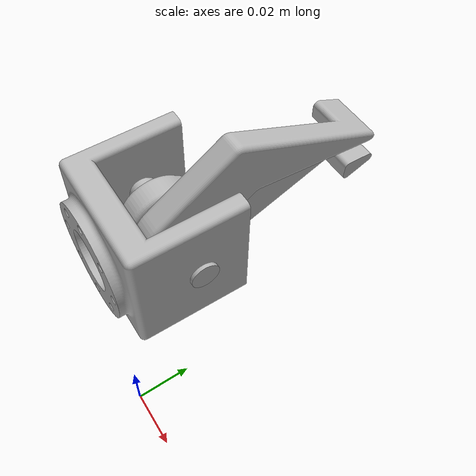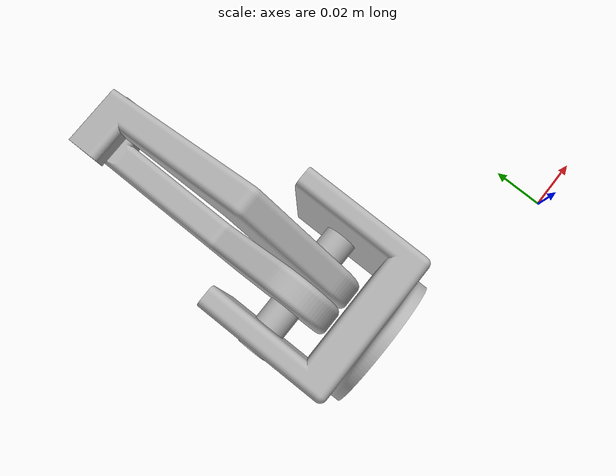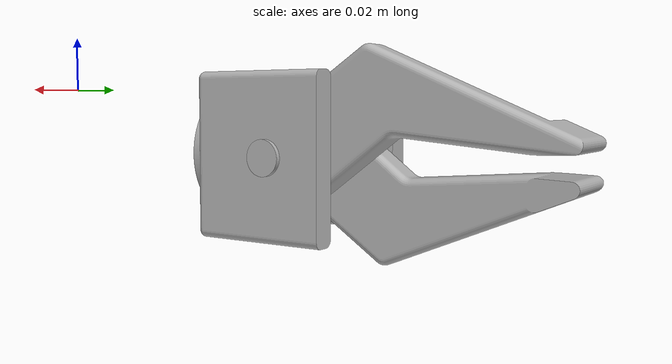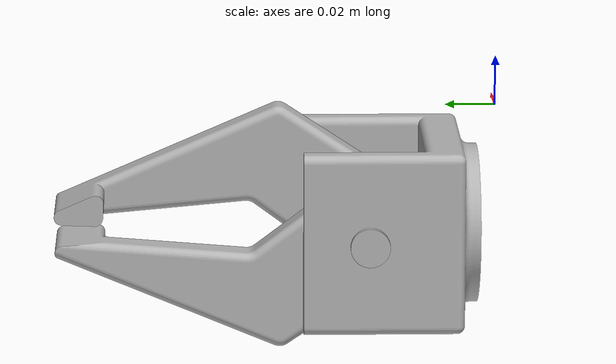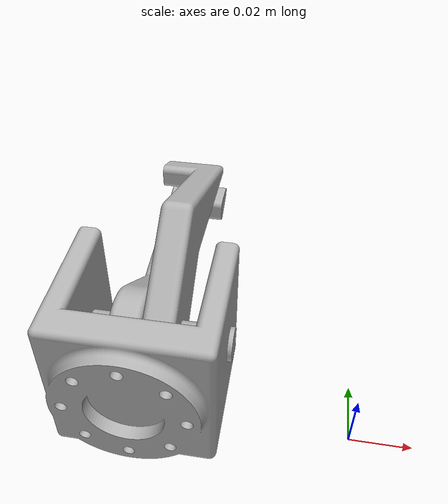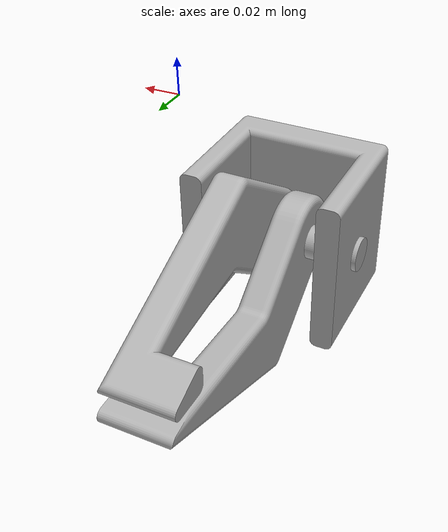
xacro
<?xml version="1.0" ?>
<robot name="fusion_to_urdf" xmlns:xacro="http://www.ros.org/wiki/xacro">

<xacro:include filename="$(find fusion_to_urdf_description)/urdf/materials.xacro" />
<xacro:include filename="$(find fusion_to_urdf_description)/urdf/fusion_to_urdf.trans" />
<xacro:include filename="$(find fusion_to_urdf_description)/urdf/fusion_to_urdf.gazebo" />
<link name="base_link">
  <inertial>
    <origin xyz="-0.08127679183221564 0.03821057434325542 -0.02659155216921605" rpy="0 0 0"/>
    <mass value="0.14502326695982237"/>
    <inertia ixx="0.000108" iyy="0.000146" izz="0.000138" ixy="-0.0" iyz="-0.0" ixz="-0.0"/>
  </inertial>
  <visual>
    <origin xyz="0 0 0" rpy="0 0 0"/>
    <geometry>
      <mesh filename="package://fusion_to_urdf_description/meshes/base_link.stl" scale="0.001 0.001 0.001"/>
    </geometry>
    <material name="silver"/>
  </visual>
  <collision>
    <origin xyz="0 0 0" rpy="0 0 0"/>
    <geometry>
      <mesh filename="package://fusion_to_urdf_description/meshes/base_link.stl" scale="0.001 0.001 0.001"/>
    </geometry>
  </collision>
</link>

<link name="gripper_axis_1">
  <inertial>
    <origin xyz="0.03500020816778461 2.1672533808553274e-07 4.4783073031504084e-07" rpy="0 0 0"/>
    <mass value="0.013076879420567386"/>
    <inertia ixx="0.0" iyy="6e-06" izz="6e-06" ixy="-0.0" iyz="-0.0" ixz="-0.0"/>
  </inertial>
  <visual>
    <origin xyz="0.116277 -0.05487 0.026592" rpy="0 0 0"/>
    <geometry>
      <mesh filename="package://fusion_to_urdf_description/meshes/gripper_axis_1.stl" scale="0.001 0.001 0.001"/>
    </geometry>
    <material name="silver"/>
  </visual>
  <collision>
    <origin xyz="0.116277 -0.05487 0.026592" rpy="0 0 0"/>
    <geometry>
      <mesh filename="package://fusion_to_urdf_description/meshes/gripper_axis_1.stl" scale="0.001 0.001 0.001"/>
    </geometry>
  </collision>
</link>

<link name="gripper_finger1_1">
  <inertial>
    <origin xyz="-0.006300688531141588 0.04015682885335303 -0.01396333967995603" rpy="0 0 0"/>
    <mass value="0.05675639567827485"/>
    <inertia ixx="8.3e-05" iyy="1.2e-05" izz="7.4e-05" ixy="-3e-06" iyz="7e-06" ixz="-0.0"/>
  </inertial>
  <visual>
    <origin xyz="0.081277 -0.05487 0.026592" rpy="0 0 0"/>
    <geometry>
      <mesh filename="package://fusion_to_urdf_description/meshes/gripper_finger1_1.stl" scale="0.001 0.001 0.001"/>
    </geometry>
    <material name="silver"/>
  </visual>
  <collision>
    <origin xyz="0.081277 -0.05487 0.026592" rpy="0 0 0"/>
    <geometry>
      <mesh filename="package://fusion_to_urdf_description/meshes/gripper_finger1_1.stl" scale="0.001 0.001 0.001"/>
    </geometry>
  </collision>
</link>

<link name="gripper_finger2_1">
  <inertial>
    <origin xyz="0.006301105851120731 0.04026656711953196 0.013644544327726719" rpy="0 0 0"/>
    <mass value="0.05675638802575729"/>
    <inertia ixx="8.3e-05" iyy="1.1e-05" izz="7.4e-05" ixy="3e-06" iyz="-6e-06" ixz="-0.0"/>
  </inertial>
  <visual>
    <origin xyz="0.081277 -0.05487 0.026592" rpy="0 0 0"/>
    <geometry>
      <mesh filename="package://fusion_to_urdf_description/meshes/gripper_finger2_1.stl" scale="0.001 0.001 0.001"/>
    </geometry>
    <material name="silver"/>
  </visual>
  <collision>
    <origin xyz="0.081277 -0.05487 0.026592" rpy="0 0 0"/>
    <geometry>
      <mesh filename="package://fusion_to_urdf_description/meshes/gripper_finger2_1.stl" scale="0.001 0.001 0.001"/>
    </geometry>
  </collision>
</link>

<joint name="°­joint1" type="fixed">
  <origin xyz="-0.116277 0.05487 -0.026592" rpy="0 0 0"/>
  <parent link="base_link"/>
  <child link="gripper_axis_1"/>
</joint>

<joint name="joint2" type="revolute">
  <origin xyz="0.035 0.0 0.0" rpy="0 0 0"/>
  <parent link="gripper_axis_1"/>
  <child link="gripper_finger1_1"/>
  <axis xyz="1.0 0.0 0.0"/>
  <limit upper="0.0" lower="-0.523599" effort="100" velocity="100"/>
</joint>

<joint name="joint3" type="revolute">
  <origin xyz="0.035 0.0 0.0" rpy="0 0 0"/>
  <parent link="gripper_axis_1"/>
  <child link="gripper_finger2_1"/>
  <axis xyz="1.0 0.0 0.0"/>
  <limit upper="0.523599" lower="0.0" effort="100" velocity="100"/>
</joint>

</robot>

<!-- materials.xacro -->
<robot name="fusion_to_urdf" xmlns:xacro="http://www.ros.org/wiki/xacro" >

<material name="silver">
  <color rgba="0.700 0.700 0.700 1.000"/>
</material>

</robot>

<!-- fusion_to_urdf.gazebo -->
<robot name="fusion_to_urdf" xmlns:xacro="http://www.ros.org/wiki/xacro" >

<xacro:property name="body_color" value="Gazebo/Silver" />

<gazebo>
  <plugin name="control" filename="libgazebo_ros_control.so"/>
</gazebo>
<gazebo reference="base_link">
  <material>${body_color}</material>
  <mu1>0.2</mu1>
  <mu2>0.2</mu2>
  <selfCollide>true</selfCollide>
  <gravity>true</gravity>
</gazebo>

<gazebo reference="gripper_axis_1">
  <material>${body_color}</material>
  <mu1>0.2</mu1>
  <mu2>0.2</mu2>
  <selfCollide>true</selfCollide>
</gazebo>

<gazebo reference="gripper_finger1_1">
  <material>${body_color}</material>
  <mu1>0.2</mu1>
  <mu2>0.2</mu2>
  <selfCollide>true</selfCollide>
</gazebo>

<gazebo reference="gripper_finger2_1">
  <material>${body_color}</material>
  <mu1>0.2</mu1>
  <mu2>0.2</mu2>
  <selfCollide>true</selfCollide>
</gazebo>

</robot>
